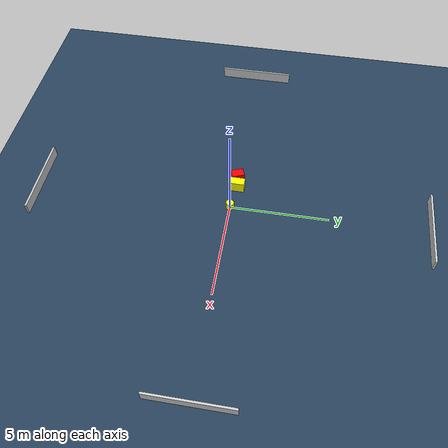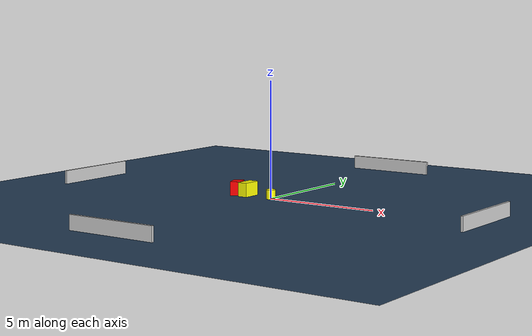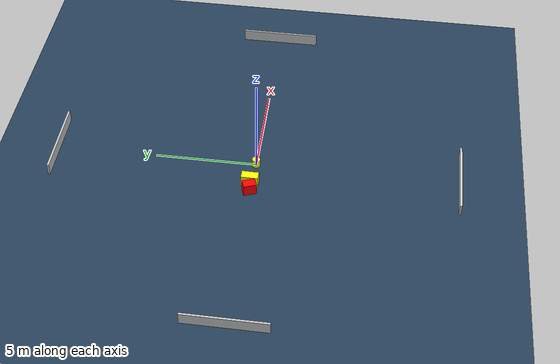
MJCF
<?xml version="1.0" ?>
<mujoco model="generated_environment">
  <option timestep="0.01" integrator="RK4" cone="elliptic"/>
  <default>
    <geom density="1"/>
  </default>
  <asset>
    <texture builtin="gradient" height="3072" name="skybox" rgb1="0.3 0.5 0.7" rgb2="0 0 0" type="skybox" width="512"/>
    <texture builtin="checker" height="300" name="groundplane" rgb1="0.2 0.3 0.4" rgb2="0.1 0.2 0.3" type="2d" width="300"/>
    <material name="groundplane" reflectance="0.2" texrepeat="5 5" texture="groundplane"/>
  </asset>
  <worldbody>
    <light dir="0 0 -1" directional="true" pos="0 0 1.5"/>
    <geom condim="3" friction="0.5 0.005 0.001" material="groundplane" name="floor" pos="0 0 0" size="0 0 0.05" type="plane"/>
    <body name="walls">
      <geom name="wall_1" condim="4" pos="-10.0 0.0 0.3" rgba="0.800000011920929 0.800000011920929 0.800000011920929 1.0" size="0.05 2.0 0.3" type="box"/>
      <geom name="wall_2" condim="4" pos="10.0 0.0 0.3" rgba="0.800000011920929 0.800000011920929 0.800000011920929 1.0" size="0.05 2.0 0.3" type="box"/>
      <geom name="wall_3" condim="4" pos="0.0 -10.0 0.3" rgba="0.800000011920929 0.800000011920929 0.800000011920929 1.0" size="2.0 0.05 0.3" type="box"/>
      <geom name="wall_4" condim="4" pos="0.0 10.0 0.3" rgba="0.800000011920929 0.800000011920929 0.800000011920929 1.0" size="2.0 0.05 0.3" type="box"/>
    </body>
    <body name="robot">
      <joint name="joint_x" type="slide" pos="0 0 0" axis="1 0 0"/>
      <joint name="joint_y" type="slide" pos="0 0 0" axis="0 1 0"/>
      <geom name="robot" type="cylinder" pos="0.0 0.0 0.2" size="0.2 0.2 0.0" mass="5.0" friction="1.0 0.005 0.0001" condim="4" rgba="1.0 1.0 0.0 1.0"/>
    </body>
    <body name="obstacle_1_movable">
      <geom name="obstacle_1_movable" condim="4" pos="-1.29490686997709 0.13231418325538694 0.3" euler="0 0 89.17694794537627" friction="0.0 0.005 0.001" rgba="1.0 1.0 0.0 1.0" size="0.4159729697942165 0.21568818264441952 0.3" type="box" mass="0.1"/>
      <joint type="free"/>
    </body>
    <body name="obstacle_2_static">
      <geom name="obstacle_2_static" condim="4" pos="-1.844351478533962 0.09539547143824867 0.3" euler="0 0 20.63373718151579" friction="0.0 0.005 0.001" rgba="1.0 0.0 0.0 1.0" size="0.22071705935431257 0.32138040864713097 0.3" type="box"/>
    </body>
  </worldbody>
  <actuator>
    <motor name="actuator_x" joint="joint_x" gear="1" ctrlrange="-1 1"/>
    <motor name="actuator_y" joint="joint_y" gear="1" ctrlrange="-1 1"/>
  </actuator>
</mujoco>
